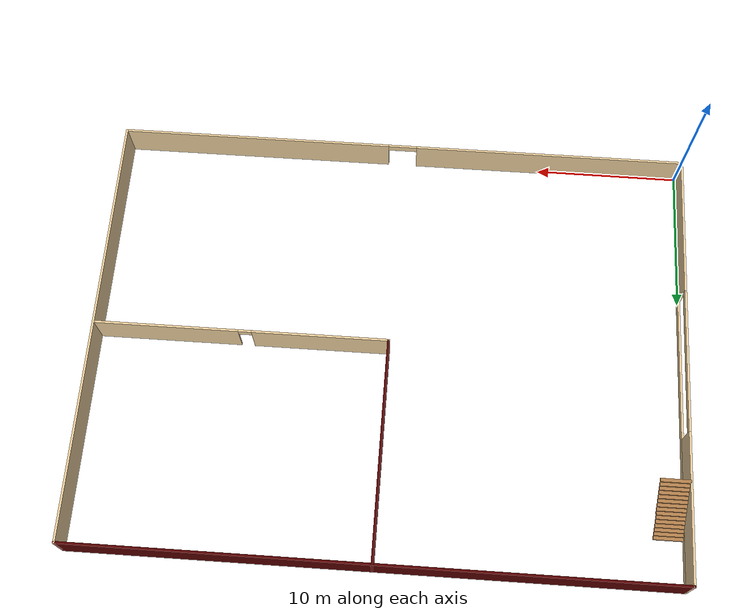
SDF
<?xml version='1.0'?>
<sdf version='1.6'>
  <model name='House'>
    <pose frame=''>20 15 0 0 -0 0</pose>
    <link name='Stairs_0'>
      <visual name='Stairs_0_Visual_0'>
        <pose frame=''>-19 11.6333 0.083333 0 -0 0</pose>
        <geometry>
          <box>
            <size>2 0.233333 0.166667</size>
          </box>
        </geometry>
        <material>
          <script>
            <uri>file://media/materials/scripts/gazebo.material</uri>
            <name>Gazebo/Wood</name>
          </script>
          <ambient>1 1 1 1</ambient>
        </material>
        <meta>
          <layer>0</layer>
        </meta>
      </visual>
      <collision name='Stairs_0_Collision_0'>
        <geometry>
          <box>
            <size>2 0.233333 0.166667</size>
          </box>
        </geometry>
        <pose frame=''>-19 11.6333 0.083333 0 -0 0</pose>
      </collision>
      <visual name='Stairs_0_Visual_1'>
        <pose frame=''>-19 11.4 0.25 0 -0 0</pose>
        <geometry>
          <box>
            <size>2 0.233333 0.166667</size>
          </box>
        </geometry>
        <material>
          <script>
            <uri>file://media/materials/scripts/gazebo.material</uri>
            <name>Gazebo/Wood</name>
          </script>
          <ambient>1 1 1 1</ambient>
        </material>
        <meta>
          <layer>0</layer>
        </meta>
      </visual>
      <collision name='Stairs_0_Collision_1'>
        <geometry>
          <box>
            <size>2 0.233333 0.166667</size>
          </box>
        </geometry>
        <pose frame=''>-19 11.4 0.25 0 -0 0</pose>
      </collision>
      <visual name='Stairs_0_Visual_2'>
        <pose frame=''>-19 11.1667 0.416667 0 -0 0</pose>
        <geometry>
          <box>
            <size>2 0.233333 0.166667</size>
          </box>
        </geometry>
        <material>
          <script>
            <uri>file://media/materials/scripts/gazebo.material</uri>
            <name>Gazebo/Wood</name>
          </script>
          <ambient>1 1 1 1</ambient>
        </material>
        <meta>
          <layer>0</layer>
        </meta>
      </visual>
      <collision name='Stairs_0_Collision_2'>
        <geometry>
          <box>
            <size>2 0.233333 0.166667</size>
          </box>
        </geometry>
        <pose frame=''>-19 11.1667 0.416667 0 -0 0</pose>
      </collision>
      <visual name='Stairs_0_Visual_3'>
        <pose frame=''>-19 10.9333 0.583333 0 -0 0</pose>
        <geometry>
          <box>
            <size>2 0.233333 0.166667</size>
          </box>
        </geometry>
        <material>
          <script>
            <uri>file://media/materials/scripts/gazebo.material</uri>
            <name>Gazebo/Wood</name>
          </script>
          <ambient>1 1 1 1</ambient>
        </material>
        <meta>
          <layer>0</layer>
        </meta>
      </visual>
      <collision name='Stairs_0_Collision_3'>
        <geometry>
          <box>
            <size>2 0.233333 0.166667</size>
          </box>
        </geometry>
        <pose frame=''>-19 10.9333 0.583333 0 -0 0</pose>
      </collision>
      <visual name='Stairs_0_Visual_4'>
        <pose frame=''>-19 10.7 0.75 0 -0 0</pose>
        <geometry>
          <box>
            <size>2 0.233333 0.166667</size>
          </box>
        </geometry>
        <material>
          <script>
            <uri>file://media/materials/scripts/gazebo.material</uri>
            <name>Gazebo/Wood</name>
          </script>
          <ambient>1 1 1 1</ambient>
        </material>
        <meta>
          <layer>0</layer>
        </meta>
      </visual>
      <collision name='Stairs_0_Collision_4'>
        <geometry>
          <box>
            <size>2 0.233333 0.166667</size>
          </box>
        </geometry>
        <pose frame=''>-19 10.7 0.75 0 -0 0</pose>
      </collision>
      <visual name='Stairs_0_Visual_5'>
        <pose frame=''>-19 10.4667 0.916667 0 -0 0</pose>
        <geometry>
          <box>
            <size>2 0.233333 0.166667</size>
          </box>
        </geometry>
        <material>
          <script>
            <uri>file://media/materials/scripts/gazebo.material</uri>
            <name>Gazebo/Wood</name>
          </script>
          <ambient>1 1 1 1</ambient>
        </material>
        <meta>
          <layer>0</layer>
        </meta>
      </visual>
      <collision name='Stairs_0_Collision_5'>
        <geometry>
          <box>
            <size>2 0.233333 0.166667</size>
          </box>
        </geometry>
        <pose frame=''>-19 10.4667 0.916667 0 -0 0</pose>
      </collision>
      <visual name='Stairs_0_Visual_6'>
        <pose frame=''>-19 10.2333 1.08333 0 -0 0</pose>
        <geometry>
          <box>
            <size>2 0.233333 0.166667</size>
          </box>
        </geometry>
        <material>
          <script>
            <uri>file://media/materials/scripts/gazebo.material</uri>
            <name>Gazebo/Wood</name>
          </script>
          <ambient>1 1 1 1</ambient>
        </material>
        <meta>
          <layer>0</layer>
        </meta>
      </visual>
      <collision name='Stairs_0_Collision_6'>
        <geometry>
          <box>
            <size>2 0.233333 0.166667</size>
          </box>
        </geometry>
        <pose frame=''>-19 10.2333 1.08333 0 -0 0</pose>
      </collision>
      <visual name='Stairs_0_Visual_7'>
        <pose frame=''>-19 10 1.25 0 -0 0</pose>
        <geometry>
          <box>
            <size>2 0.233333 0.166667</size>
          </box>
        </geometry>
        <material>
          <script>
            <uri>file://media/materials/scripts/gazebo.material</uri>
            <name>Gazebo/Wood</name>
          </script>
          <ambient>1 1 1 1</ambient>
        </material>
        <meta>
          <layer>0</layer>
        </meta>
      </visual>
      <collision name='Stairs_0_Collision_7'>
        <geometry>
          <box>
            <size>2 0.233333 0.166667</size>
          </box>
        </geometry>
        <pose frame=''>-19 10 1.25 0 -0 0</pose>
      </collision>
      <visual name='Stairs_0_Visual_8'>
        <pose frame=''>-19 9.76667 1.41667 0 -0 0</pose>
        <geometry>
          <box>
            <size>2 0.233333 0.166667</size>
          </box>
        </geometry>
        <material>
          <script>
            <uri>file://media/materials/scripts/gazebo.material</uri>
            <name>Gazebo/Wood</name>
          </script>
          <ambient>1 1 1 1</ambient>
        </material>
        <meta>
          <layer>0</layer>
        </meta>
      </visual>
      <collision name='Stairs_0_Collision_8'>
        <geometry>
          <box>
            <size>2 0.233333 0.166667</size>
          </box>
        </geometry>
        <pose frame=''>-19 9.76667 1.41667 0 -0 0</pose>
      </collision>
      <visual name='Stairs_0_Visual_9'>
        <pose frame=''>-19 9.53333 1.58333 0 -0 0</pose>
        <geometry>
          <box>
            <size>2 0.233333 0.166667</size>
          </box>
        </geometry>
        <material>
          <script>
            <uri>file://media/materials/scripts/gazebo.material</uri>
            <name>Gazebo/Wood</name>
          </script>
          <ambient>1 1 1 1</ambient>
        </material>
        <meta>
          <layer>0</layer>
        </meta>
      </visual>
      <collision name='Stairs_0_Collision_9'>
        <geometry>
          <box>
            <size>2 0.233333 0.166667</size>
          </box>
        </geometry>
        <pose frame=''>-19 9.53333 1.58333 0 -0 0</pose>
      </collision>
      <visual name='Stairs_0_Visual_10'>
        <pose frame=''>-19 9.3 1.75 0 -0 0</pose>
        <geometry>
          <box>
            <size>2 0.233333 0.166667</size>
          </box>
        </geometry>
        <material>
          <script>
            <uri>file://media/materials/scripts/gazebo.material</uri>
            <name>Gazebo/Wood</name>
          </script>
          <ambient>1 1 1 1</ambient>
        </material>
        <meta>
          <layer>0</layer>
        </meta>
      </visual>
      <collision name='Stairs_0_Collision_10'>
        <geometry>
          <box>
            <size>2 0.233333 0.166667</size>
          </box>
        </geometry>
        <pose frame=''>-19 9.3 1.75 0 -0 0</pose>
      </collision>
      <visual name='Stairs_0_Visual_11'>
        <pose frame=''>-19 9.06667 1.91667 0 -0 0</pose>
        <geometry>
          <box>
            <size>2 0.233333 0.166667</size>
          </box>
        </geometry>
        <material>
          <script>
            <uri>file://media/materials/scripts/gazebo.material</uri>
            <name>Gazebo/Wood</name>
          </script>
          <ambient>1 1 1 1</ambient>
        </material>
        <meta>
          <layer>0</layer>
        </meta>
      </visual>
      <collision name='Stairs_0_Collision_11'>
        <geometry>
          <box>
            <size>2 0.233333 0.166667</size>
          </box>
        </geometry>
        <pose frame=''>-19 9.06667 1.91667 0 -0 0</pose>
      </collision>
      <visual name='Stairs_0_Visual_12'>
        <pose frame=''>-19 8.83333 2.08333 0 -0 0</pose>
        <geometry>
          <box>
            <size>2 0.233333 0.166667</size>
          </box>
        </geometry>
        <material>
          <script>
            <uri>file://media/materials/scripts/gazebo.material</uri>
            <name>Gazebo/Wood</name>
          </script>
          <ambient>1 1 1 1</ambient>
        </material>
        <meta>
          <layer>0</layer>
        </meta>
      </visual>
      <collision name='Stairs_0_Collision_12'>
        <geometry>
          <box>
            <size>2 0.233333 0.166667</size>
          </box>
        </geometry>
        <pose frame=''>-19 8.83333 2.08333 0 -0 0</pose>
      </collision>
      <visual name='Stairs_0_Visual_13'>
        <pose frame=''>-19 8.6 2.25 0 -0 0</pose>
        <geometry>
          <box>
            <size>2 0.233333 0.166667</size>
          </box>
        </geometry>
        <material>
          <script>
            <uri>file://media/materials/scripts/gazebo.material</uri>
            <name>Gazebo/Wood</name>
          </script>
          <ambient>1 1 1 1</ambient>
        </material>
        <meta>
          <layer>0</layer>
        </meta>
      </visual>
      <collision name='Stairs_0_Collision_13'>
        <geometry>
          <box>
            <size>2 0.233333 0.166667</size>
          </box>
        </geometry>
        <pose frame=''>-19 8.6 2.25 0 -0 0</pose>
      </collision>
      <visual name='Stairs_0_Visual_14'>
        <pose frame=''>-19 8.36667 2.41667 0 -0 0</pose>
        <geometry>
          <box>
            <size>2 0.233333 0.166667</size>
          </box>
        </geometry>
        <material>
          <script>
            <uri>file://media/materials/scripts/gazebo.material</uri>
            <name>Gazebo/Wood</name>
          </script>
          <ambient>1 1 1 1</ambient>
        </material>
        <meta>
          <layer>0</layer>
        </meta>
      </visual>
      <collision name='Stairs_0_Collision_14'>
        <geometry>
          <box>
            <size>2 0.233333 0.166667</size>
          </box>
        </geometry>
        <pose frame=''>-19 8.36667 2.41667 0 -0 0</pose>
      </collision>
    </link>
    <link name='Wall_0'>
      <pose frame=''>-20 0 0 0 -0 1.5708</pose>
      <visual name='Wall_0_Visual_0'>
        <pose frame=''>-10.0375 0 1.25 0 -0 0</pose>
        <geometry>
          <box>
            <size>10.075 0.15 2.5</size>
          </box>
        </geometry>
        <material>
          <script>
            <uri>file://media/materials/scripts/gazebo.material</uri>
            <name>Gazebo/Grey</name>
          </script>
          <ambient>0.921569 0.807843 0.615686 1</ambient>
        </material>
        <meta>
          <layer>0</layer>
        </meta>
      </visual>
      <collision name='Wall_0_Collision_0'>
        <geometry>
          <box>
            <size>10.075 0.15 2.5</size>
          </box>
        </geometry>
        <pose frame=''>-10.0375 0 1.25 0 -0 0</pose>
      </collision>
      <visual name='Wall_0_Visual_1'>
        <pose frame=''>5.0375 0 0.25 0 -0 0</pose>
        <geometry>
          <box>
            <size>20.075 0.15 0.5</size>
          </box>
        </geometry>
        <material>
          <script>
            <uri>file://media/materials/scripts/gazebo.material</uri>
            <name>Gazebo/Grey</name>
          </script>
          <ambient>0.921569 0.807843 0.615686 1</ambient>
        </material>
        <meta>
          <layer>0</layer>
        </meta>
      </visual>
      <collision name='Wall_0_Collision_1'>
        <geometry>
          <box>
            <size>20.075 0.15 0.5</size>
          </box>
        </geometry>
        <pose frame=''>5.0375 0 0.25 0 -0 0</pose>
      </collision>
      <visual name='Wall_0_Visual_2'>
        <pose frame=''>10.0375 0 1.5 0 -0 0</pose>
        <geometry>
          <box>
            <size>10.075 0.15 2</size>
          </box>
        </geometry>
        <material>
          <script>
            <uri>file://media/materials/scripts/gazebo.material</uri>
            <name>Gazebo/Grey</name>
          </script>
          <ambient>0.921569 0.807843 0.615686 1</ambient>
        </material>
        <meta>
          <layer>0</layer>
        </meta>
      </visual>
      <collision name='Wall_0_Collision_2'>
        <geometry>
          <box>
            <size>10.075 0.15 2</size>
          </box>
        </geometry>
        <pose frame=''>10.0375 0 1.5 0 -0 0</pose>
      </collision>
      <visual name='Wall_0_Visual_3'>
        <pose frame=''>0 0 2.25 0 -0 0</pose>
        <geometry>
          <box>
            <size>10 0.15 0.5</size>
          </box>
        </geometry>
        <material>
          <script>
            <uri>file://media/materials/scripts/gazebo.material</uri>
            <name>Gazebo/Grey</name>
          </script>
          <ambient>0.921569 0.807843 0.615686 1</ambient>
        </material>
        <meta>
          <layer>0</layer>
        </meta>
      </visual>
      <collision name='Wall_0_Collision_3'>
        <geometry>
          <box>
            <size>10 0.15 0.5</size>
          </box>
        </geometry>
        <pose frame=''>0 0 2.25 0 -0 0</pose>
      </collision>
    </link>
    <link name='Wall_1'>
      <collision name='Wall_1_Collision'>
        <geometry>
          <box>
            <size>40.15 0.15 2.5</size>
          </box>
        </geometry>
        <pose frame=''>0 0 1.25 0 -0 0</pose>
      </collision>
      <visual name='Wall_1_Visual'>
        <pose frame=''>0 0 1.25 0 -0 0</pose>
        <geometry>
          <box>
            <size>40.15 0.15 2.5</size>
          </box>
        </geometry>
        <material>
          <script>
            <uri>file://media/materials/scripts/gazebo.material</uri>
            <name>Gazebo/Grey</name>
          </script>
          <ambient>0.333333 0 0 1</ambient>
        </material>
        <meta>
          <layer>0</layer>
        </meta>
      </visual>
      <pose frame=''>1e-06 15 0 0 -0 0</pose>
    </link>
    <link name='Wall_2'>
      <collision name='Wall_2_Collision'>
        <geometry>
          <box>
            <size>30.15 0.15 2.5</size>
          </box>
        </geometry>
        <pose frame=''>0 0 1.25 0 -0 0</pose>
      </collision>
      <visual name='Wall_2_Visual'>
        <pose frame=''>0 0 1.25 0 -0 0</pose>
        <geometry>
          <box>
            <size>30.15 0.15 2.5</size>
          </box>
        </geometry>
        <material>
          <script>
            <uri>file://media/materials/scripts/gazebo.material</uri>
            <name>Gazebo/Grey</name>
          </script>
          <ambient>0.921569 0.807843 0.615686 1</ambient>
        </material>
        <meta>
          <layer>0</layer>
        </meta>
      </visual>
      <pose frame=''>20 0 0 0 0 -1.5708</pose>
    </link>
    <link name='Wall_3'>
      <pose frame=''>1e-06 -15 0 0 -0 3.14159</pose>
      <visual name='Wall_3_Visual_0'>
        <pose frame=''>-10.5375 0 1.25 0 -0 0</pose>
        <geometry>
          <box>
            <size>19.075 0.15 2.5</size>
          </box>
        </geometry>
        <material>
          <script>
            <uri>file://media/materials/scripts/gazebo.material</uri>
            <name>Gazebo/Grey</name>
          </script>
          <ambient>0.921569 0.807843 0.615686 1</ambient>
        </material>
        <meta>
          <layer>0</layer>
        </meta>
      </visual>
      <collision name='Wall_3_Collision_0'>
        <geometry>
          <box>
            <size>19.075 0.15 2.5</size>
          </box>
        </geometry>
        <pose frame=''>-10.5375 0 1.25 0 -0 0</pose>
      </collision>
      <visual name='Wall_3_Visual_1'>
        <pose frame=''>10.5375 0 1.25 0 -0 0</pose>
        <geometry>
          <box>
            <size>19.075 0.15 2.5</size>
          </box>
        </geometry>
        <material>
          <script>
            <uri>file://media/materials/scripts/gazebo.material</uri>
            <name>Gazebo/Grey</name>
          </script>
          <ambient>0.921569 0.807843 0.615686 1</ambient>
        </material>
        <meta>
          <layer>0</layer>
        </meta>
      </visual>
      <collision name='Wall_3_Collision_1'>
        <geometry>
          <box>
            <size>19.075 0.15 2.5</size>
          </box>
        </geometry>
        <pose frame=''>10.5375 0 1.25 0 -0 0</pose>
      </collision>
      <visual name='Wall_3_Visual_2'>
        <pose frame=''>0 0 2.25 0 -0 0</pose>
        <geometry>
          <box>
            <size>2 0.15 0.5</size>
          </box>
        </geometry>
        <material>
          <script>
            <uri>file://media/materials/scripts/gazebo.material</uri>
            <name>Gazebo/Grey</name>
          </script>
          <ambient>0.921569 0.807843 0.615686 1</ambient>
        </material>
        <meta>
          <layer>0</layer>
        </meta>
      </visual>
      <collision name='Wall_3_Collision_2'>
        <geometry>
          <box>
            <size>2 0.15 0.5</size>
          </box>
        </geometry>
        <pose frame=''>0 0 2.25 0 -0 0</pose>
      </collision>
    </link>
    <link name='Wall_5'>
      <pose frame=''>10 0 0 0 -0 3.14159</pose>
      <visual name='Wall_5_Visual_0'>
        <pose frame=''>-5.11541 0 1.25 0 -0 0</pose>
        <geometry>
          <box>
            <size>9.91918 0.15 2.5</size>
          </box>
        </geometry>
        <material>
          <script>
            <uri>file://media/materials/scripts/gazebo.material</uri>
            <name>Gazebo/Grey</name>
          </script>
          <ambient>0.921569 0.807843 0.615686 1</ambient>
        </material>
        <meta>
          <layer>0</layer>
        </meta>
      </visual>
      <collision name='Wall_5_Collision_0'>
        <geometry>
          <box>
            <size>9.91918 0.15 2.5</size>
          </box>
        </geometry>
        <pose frame=''>-5.11541 0 1.25 0 -0 0</pose>
      </collision>
      <visual name='Wall_5_Visual_1'>
        <pose frame=''>5.40959 0 1.25 0 -0 0</pose>
        <geometry>
          <box>
            <size>9.33082 0.15 2.5</size>
          </box>
        </geometry>
        <material>
          <script>
            <uri>file://media/materials/scripts/gazebo.material</uri>
            <name>Gazebo/Grey</name>
          </script>
          <ambient>0.921569 0.807843 0.615686 1</ambient>
        </material>
        <meta>
          <layer>0</layer>
        </meta>
      </visual>
      <collision name='Wall_5_Collision_1'>
        <geometry>
          <box>
            <size>9.33082 0.15 2.5</size>
          </box>
        </geometry>
        <pose frame=''>5.40959 0 1.25 0 -0 0</pose>
      </collision>
      <visual name='Wall_5_Visual_2'>
        <pose frame=''>0.294178 0 2.25 0 -0 0</pose>
        <geometry>
          <box>
            <size>0.9 0.15 0.5</size>
          </box>
        </geometry>
        <material>
          <script>
            <uri>file://media/materials/scripts/gazebo.material</uri>
            <name>Gazebo/Grey</name>
          </script>
          <ambient>0.921569 0.807843 0.615686 1</ambient>
        </material>
        <meta>
          <layer>0</layer>
        </meta>
      </visual>
      <collision name='Wall_5_Collision_2'>
        <geometry>
          <box>
            <size>0.9 0.15 0.5</size>
          </box>
        </geometry>
        <pose frame=''>0.294178 0 2.25 0 -0 0</pose>
      </collision>
    </link>
    <link name='Wall_6'>
      <collision name='Wall_6_Collision'>
        <geometry>
          <box>
            <size>15.15 0.15 2.5</size>
          </box>
        </geometry>
        <pose frame=''>0 0 1.25 0 -0 0</pose>
      </collision>
      <visual name='Wall_6_Visual'>
        <pose frame=''>0 0 1.25 0 -0 0</pose>
        <geometry>
          <box>
            <size>15.15 0.15 2.5</size>
          </box>
        </geometry>
        <material>
          <script>
            <uri>file://media/materials/scripts/gazebo.material</uri>
            <name>Gazebo/Grey</name>
          </script>
          <ambient>0.333333 0 0 1</ambient>
        </material>
        <meta>
          <layer>0</layer>
        </meta>
      </visual>
      <pose frame=''>1e-06 7.5 0 0 -0 1.5708</pose>
    </link>
    <static>1</static>
  </model>
</sdf>
